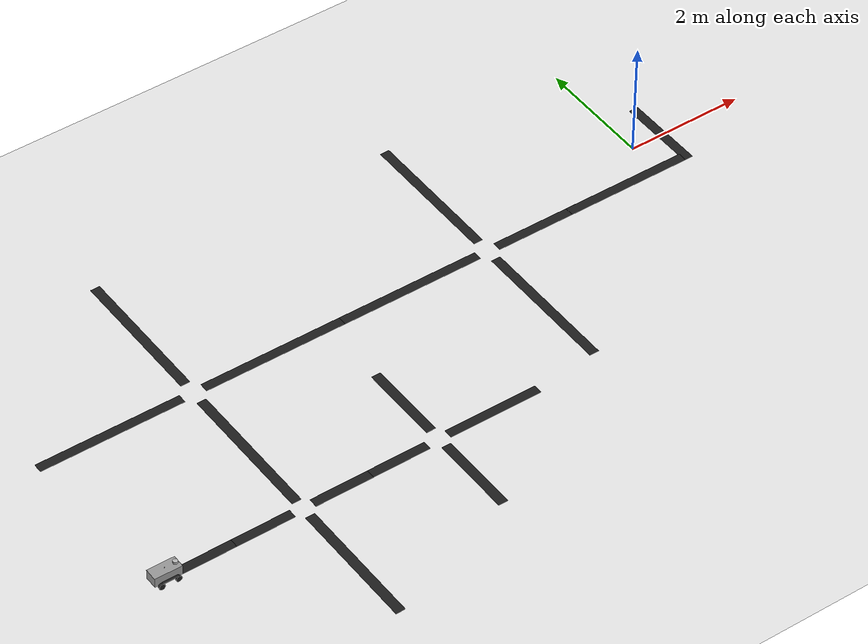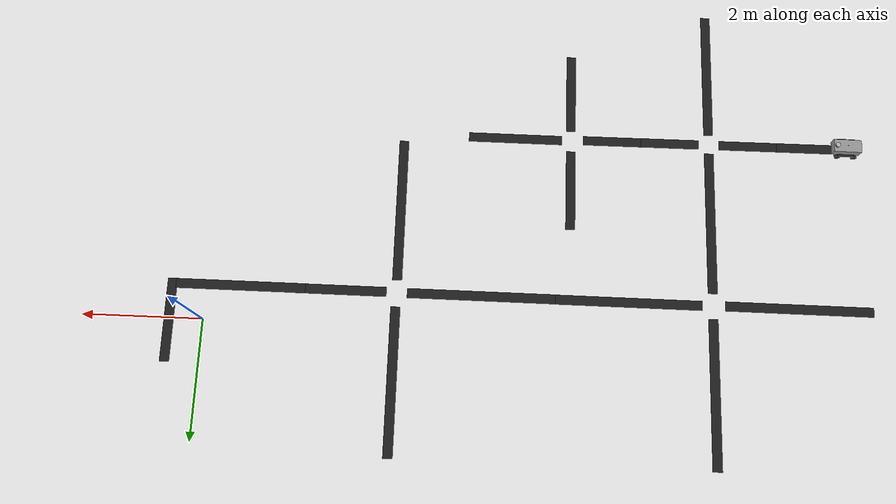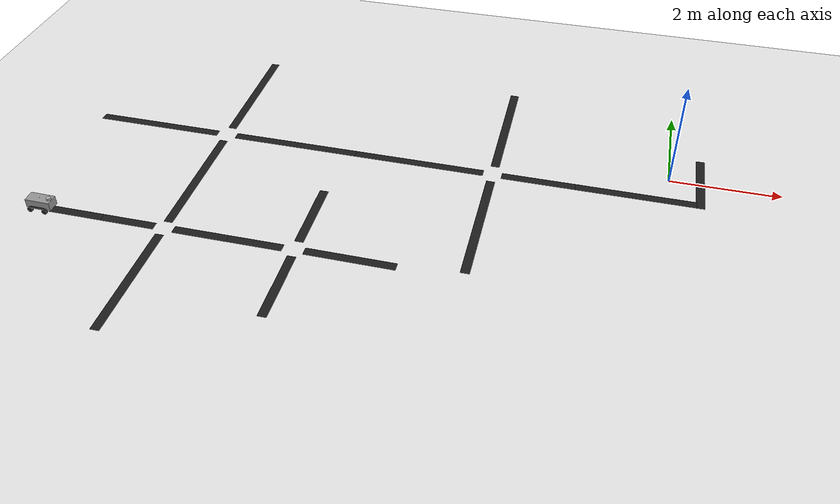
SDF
<sdf version="1.7">
 <world name="default">
  <light name="sun" type="directional">
   <pose>0 0 10 0 -0 0</pose>
   <diffuse>0.8 0.8 0.8 1</diffuse>
   <specular>0.2 0.2 0.2 1</specular>
   <attenuation>
    <range>1000</range>
    <constant>0.9</constant>
    <linear>0.01</linear>
    <quadratic>0.001</quadratic>
   </attenuation>
   <direction>-0.5 0.1 -0.9</direction>
   <spot><inner_angle>0</inner_angle><outer_angle>0</outer_angle><falloff>0</falloff></spot>
  </light>
  <model name="ground_plane">
   <static>1</static>
   <link name="link">
    <collision name="collision">
     <geometry><plane><normal>0 0 1</normal><size>100 100</size></plane></geometry>
     <surface>
      <contact><collide_bitmask>65535</collide_bitmask></contact>
      <friction><ode><mu>100</mu><mu2>50</mu2></ode></friction>
     </surface>
    </collision>
    <visual name="visual">
     <cast_shadows>0</cast_shadows>
     <geometry><plane><normal>0 0 1</normal><size>100 100</size></plane></geometry>
     <material>
      <script><uri>file://media/materials/scripts/gazebo.material</uri><name>Gazebo/White</name></script>
     </material>
    </visual>
   </link>
  </model>
  <model name="tankbot0">
   <pose>-10.7976 -3.38848 1e-06 3e-06 1e-05 -0.013737</pose>
   <frame name="tankbot::__model__" attached_to="tankbot::chassis">
    <pose relative_to="__model__">0 0 0 0 -0 0</pose>
   </frame>
   <link name="tankbot::chassis">
    <pose relative_to="tankbot::__model__">0 0 0.135 0 -0 0</pose>
    <inertial>
     <pose>0.0465 0 0 0 -0 0</pose>
     <mass>2</mass>
     <inertia>
      <ixx>0.0125927</ixx>
      <iyy>0.0408542</iyy>
      <izz>0.0438135</izz>
      <ixy>0</ixy>
      <ixz>0</ixz>
      <iyz>0</iyz>
     </inertia>
    </inertial>
    <collision name="collision"><geometry><box><size>0.465 0.216 0.17</size></box></geometry></collision>
    <visual name="visual">
     <geometry><box><size>0.465 0.216 0.17</size></box></geometry>
     <material>
      <script><uri>file://media/materials/scripts/gazebo.material</uri><name>Gazebo/Grey</name></script>
     </material>
    </visual>
   </link>
   <link name="tankbot::wheel_fl">
    <pose relative_to="tankbot::__model__">0.1395 0.142 0.05 -1.5708 -0.087266 0</pose>
    <inertial>
     <mass>0.25</mass>
     <inertia>
      <ixx>0.000189583</ixx>
      <iyy>0.000189583</iyy>
      <izz>0.0003125</izz>
      <ixy>0</ixy>
      <ixz>0</ixz>
      <iyz>0</iyz>
     </inertia>
    </inertial>
    <collision name="collision">
     <geometry><cylinder><radius>0.05</radius><length>0.04</length></cylinder></geometry>
    </collision>
    <visual name="tankbot::wheel_fl">
     <geometry><cylinder><radius>0.05</radius><length>0.04</length></cylinder></geometry>
     <material>
      <script><uri>file://media/materials/scripts/gazebo.material</uri><name>Gazebo/Black</name></script>
     </material>
    </visual>
   </link>
   <joint name="tankbot::wheel_fl_drive" type="revolute">
    <parent>tankbot::chassis</parent>
    <child>tankbot::wheel_fl</child>
    <axis>
     <xyz>0 0 1</xyz>
     <limit><lower>-1e+16</lower><upper>1e+16</upper></limit>
     <dynamics><spring_reference>0</spring_reference><spring_stiffness>0</spring_stiffness></dynamics>
    </axis>
   </joint>
   <link name="tankbot::chain_l_up">
    <pose relative_to="tankbot::__model__">0.0098 0.14 0.1 0 -0 0</pose>
    <gravity>0</gravity>
    <collision name="collision"><geometry><box><size>0.28 0.04 0.01</size></box></geometry></collision>
    <visual name="visual">
     <geometry><box><size>0.28 0.04 0.01</size></box></geometry>
     <material>
      <script><uri>file://media/materials/scripts/gazebo.material</uri><name>Gazebo/Black</name></script>
     </material>
    </visual>
    <inertial>
     <inertia><ixx>1</ixx><ixy>0</ixy><ixz>0</ixz><iyy>1</iyy><iyz>0</iyz><izz>1</izz></inertia>
     <mass>1</mass>
    </inertial>
   </link>
   <link name="tankbot::chain_r_up">
    <pose relative_to="tankbot::__model__">0.0098 -0.14 0.1 0 -0 0</pose>
    <gravity>0</gravity>
    <collision name="collision"><geometry><box><size>0.28 0.04 0.01</size></box></geometry></collision>
    <visual name="visual">
     <geometry><box><size>0.28 0.04 0.01</size></box></geometry>
     <material>
      <script><uri>file://media/materials/scripts/gazebo.material</uri><name>Gazebo/Black</name></script>
     </material>
    </visual>
    <inertial>
     <inertia><ixx>1</ixx><ixy>0</ixy><ixz>0</ixz><iyy>1</iyy><iyz>0</iyz><izz>1</izz></inertia>
     <mass>1</mass>
    </inertial>
   </link>
   <joint name="tankbot::chain_up_joint" type="revolute">
    <parent>tankbot::chassis</parent>
    <child>tankbot::chain_r_up</child>
   </joint>
   <joint name="tankbot::chain_up_2_joint" type="revolute">
    <parent>tankbot::chassis</parent>
    <child>tankbot::chain_l_up</child>
   </joint>
   <link name="tankbot::wheel_fr">
    <pose relative_to="tankbot::__model__">0.1395 -0.142 0.05 -1.5708 -0.087266 0</pose>
    <inertial>
     <mass>0.25</mass>
     <inertia>
      <ixx>0.000189583</ixx>
      <iyy>0.000189583</iyy>
      <izz>0.0003125</izz>
      <ixy>0</ixy>
      <ixz>0</ixz>
      <iyz>0</iyz>
     </inertia>
    </inertial>
    <collision name="collision">
     <geometry><cylinder><radius>0.05</radius><length>0.04</length></cylinder></geometry>
    </collision>
    <visual name="visual">
     <geometry><cylinder><radius>0.05</radius><length>0.04</length></cylinder></geometry>
     <material>
      <script><uri>file://media/materials/scripts/gazebo.material</uri><name>Gazebo/Black</name></script>
     </material>
    </visual>
   </link>
   <joint name="tankbot::wheel_fr_drive" type="revolute">
    <parent>tankbot::chassis</parent>
    <child>tankbot::wheel_fr</child>
    <axis>
     <xyz>0 0 1</xyz>
     <limit><lower>-1e+16</lower><upper>1e+16</upper></limit>
     <dynamics><spring_reference>0</spring_reference><spring_stiffness>0</spring_stiffness></dynamics>
    </axis>
   </joint>
   <link name="tankbot::wheel_rl">
    <pose relative_to="tankbot::__model__">-0.1395 0.142 0.05 -1.5708 0 0</pose>
    <inertial>
     <mass>0.25</mass>
     <inertia>
      <ixx>0.000189583</ixx>
      <iyy>0.000189583</iyy>
      <izz>0.0003125</izz>
      <ixy>0</ixy>
      <ixz>0</ixz>
      <iyz>0</iyz>
     </inertia>
    </inertial>
    <collision name="collision">
     <geometry><cylinder><radius>0.05</radius><length>0.04</length></cylinder></geometry>
    </collision>
    <visual name="visual">
     <geometry><cylinder><radius>0.05</radius><length>0.04</length></cylinder></geometry>
     <material>
      <script><uri>file://media/materials/scripts/gazebo.material</uri><name>Gazebo/Black</name></script>
     </material>
    </visual>
   </link>
   <joint name="tankbot::wheel_rl_drive" type="revolute">
    <parent>tankbot::chassis</parent>
    <child>tankbot::wheel_rl</child>
    <axis>
     <xyz>0 0 1</xyz>
     <limit><lower>-1e+16</lower><upper>1e+16</upper></limit>
     <dynamics><spring_reference>0</spring_reference><spring_stiffness>0</spring_stiffness></dynamics>
    </axis>
   </joint>
   <link name="tankbot::wheel_rr">
    <pose relative_to="tankbot::__model__">-0.1395 -0.142 0.05 -1.5708 0 0</pose>
    <inertial>
     <mass>0.25</mass>
     <inertia>
      <ixx>0.000189583</ixx>
      <iyy>0.000189583</iyy>
      <izz>0.0003125</izz>
      <ixy>0</ixy>
      <ixz>0</ixz>
      <iyz>0</iyz>
     </inertia>
    </inertial>
    <collision name="collision">
     <geometry><cylinder><radius>0.05</radius><length>0.04</length></cylinder></geometry>
    </collision>
    <visual name="visual">
     <geometry><cylinder><radius>0.05</radius><length>0.04</length></cylinder></geometry>
     <material>
      <script><uri>file://media/materials/scripts/gazebo.material</uri><name>Gazebo/Black</name></script>
     </material>
    </visual>
   </link>
   <joint name="tankbot::wheel_rr_drive" type="revolute">
    <parent>tankbot::chassis</parent>
    <child>tankbot::wheel_rr</child>
    <axis>
     <xyz>0 0 1</xyz>
     <limit><lower>-1e+16</lower><upper>1e+16</upper></limit>
     <dynamics><spring_reference>0</spring_reference><spring_stiffness>0</spring_stiffness></dynamics>
    </axis>
   </joint>
   <frame name="tankbot::ultrasonic_sensor::__model__" attached_to="tankbot::ultrasonic_sensor::link">
    <pose relative_to="tankbot::__model__">0.18 0 0.24 0 -0 0</pose>
   </frame>
   <link name="tankbot::ultrasonic_sensor::link">
    <inertial>
     <mass>0.1</mass>
     <inertia><ixx>1</ixx><ixy>0</ixy><ixz>0</ixz><iyy>1</iyy><iyz>0</iyz><izz>1</izz></inertia>
    </inertial>
    <visual name="visual">
     <geometry><cylinder><radius>0.04</radius><length>0.04</length></cylinder></geometry>
    </visual>
    <collision name="collision-base">
     <pose>0 0 -0.0145 0 -0 0</pose>
     <geometry><box><size>0.05 0.05 0.041</size></box></geometry>
    </collision>
    <collision name="collision-top">
     <pose>0 0 0.0205 0 -0 0</pose>
     <geometry><cylinder><radius>0.021</radius><length>0.029</length></cylinder></geometry>
    </collision>
    <sensor name="sonar" type="sonar">
     <pose>0.04 0 0 0 1.5 3.14</pose>
     <sonar><min>0</min><max>3</max><radius>0.3</radius></sonar>
     <plugin name="sonar" filename="libSonarPlugin.so"/>
     <always_on>1</always_on>
     <update_rate>30</update_rate>
     <visualize>1</visualize>
    </sensor>
    <pose relative_to="tankbot::ultrasonic_sensor::__model__">0 0 0 0 -0 0</pose>
   </link>
   <joint name="tankbot::sonar_joint" type="fixed">
    <child>tankbot::ultrasonic_sensor::link</child>
    <parent>tankbot::chassis</parent>
   </joint>
   <frame name="tankbot::camera_sensor::__model__" attached_to="tankbot::camera_sensor::link">
    <pose relative_to="tankbot::__model__">0.2 0 0.04 0 1.57 0</pose>
   </frame>
   <link name="tankbot::camera_sensor::link">
    <inertial>
     <mass>0.1</mass>
     <inertia><ixx>1</ixx><ixy>0</ixy><ixz>0</ixz><iyy>1</iyy><iyz>0</iyz><izz>1</izz></inertia>
    </inertial>
    <visual name="visual">
     <geometry><box><size>0.01 0.07 0.04</size></box></geometry>
     <material>
      <script><uri>file://media/materials/scripts/gazebo.material</uri><name>Gazebo/Red</name></script>
     </material>
    </visual>
    <collision name="collision">
     <pose>0 0 -0.0145 0 -0 0</pose>
     <geometry><box><size>0.01 0.07 0.04</size></box></geometry>
    </collision>
    <sensor name="camera" type="camera">
     <camera>
      <horizontal_fov>1.39626</horizontal_fov>
      <image><width>2</width><height>2</height></image>
      <clip><near>0.02</near><far>300</far></clip>
     </camera>
     <always_on>1</always_on>
     <update_rate>10</update_rate>
     <visualize>1</visualize>
     <plugin name="camera_controller" filename="libCameraPlugin.so"/>
    </sensor>
    <pose relative_to="tankbot::camera_sensor::__model__">0 0 0 0 -0 0</pose>
   </link>
   <frame name="tankbot::microphone_sensor::__model__" attached_to="tankbot::microphone_sensor::link">
    <pose relative_to="tankbot::__model__">0 0 0.23 0 -0 0</pose>
   </frame>
   <link name="tankbot::microphone_sensor::link">
    <inertial>
     <mass>0.1</mass>
     <inertia><ixx>1</ixx><ixy>0</ixy><ixz>0</ixz><iyy>1</iyy><iyz>0</iyz><izz>1</izz></inertia>
    </inertial>
    <visual name="visual">
     <geometry><box><size>0.01 0.01 0.01</size></box></geometry>
     <material>
      <script><uri>file://media/materials/scripts/gazebo.material</uri><name>Gazebo/Grey</name></script>
     </material>
    </visual>
    <collision name="collision"><geometry><box><size>0.01 0.01 0.01</size></box></geometry></collision>
    <pose relative_to="tankbot::microphone_sensor::__model__">0 0 0 0 -0 0</pose>
   </link>
   <plugin name="microphone_controller" filename="libmicrophone_control_plugin.so"/>
   <joint name="tankbot::camera_joint" type="fixed">
    <child>tankbot::camera_sensor::link</child>
    <parent>tankbot::chassis</parent>
   </joint>
   <plugin name="tankbot_control" filename="libtank_control_plugin.so"/>
   <plugin name="tankbot_control" filename="libtank_control_plugin.so"/>
  </model>
  <gravity>0 0 -9.8</gravity>
  <magnetic_field>6e-06 2.3e-05 -4.2e-05</magnetic_field>
  <atmosphere type="adiabatic"/>
  <physics type="ode">
   <max_step_size>0.001</max_step_size>
   <real_time_factor>1</real_time_factor>
   <real_time_update_rate>1000</real_time_update_rate>
  </physics>
  <scene><ambient>0.4 0.4 0.4 1</ambient><background>0.7 0.7 0.7 1</background><shadows>1</shadows></scene>
  <spherical_coordinates>
   <surface_model>EARTH_WGS84</surface_model>
   <latitude_deg>0</latitude_deg>
   <longitude_deg>0</longitude_deg>
   <elevation>0</elevation>
   <heading_deg>0</heading_deg>
  </spherical_coordinates>
  <model name="unit_box_clone_0">
   <link name="link">
    <inertial>
     <mass>1</mass>
     <inertia>
      <ixx>0.166667</ixx>
      <ixy>0</ixy>
      <ixz>0</ixz>
      <iyy>0.166667</iyy>
      <iyz>0</iyz>
      <izz>0.166667</izz>
     </inertia>
    </inertial>
    <visual name="visual">
     <geometry><box><size>1 0.160776 0.000937</size></box></geometry>
     <material>
      <script><name>Gazebo/Black</name><uri>file://media/materials/scripts/gazebo.material</uri></script>
      <shader type="pixel"><normal_map>__default__</normal_map></shader>
      <ambient>0 0 0 1</ambient>
      <diffuse>0 0 0 1</diffuse>
      <specular>0.1 0.1 0.1 1</specular>
      <emissive>0 0 0 1</emissive>
     </material>
    </visual>
    <collision name="collision">
     <geometry><box><size>1 0.160776 0.000937</size></box></geometry>
     <surface>
      <friction>
       <ode><mu>1</mu><mu2>1</mu2><fdir1>0 0 0</fdir1><slip1>0</slip1><slip2>0</slip2></ode>
       <torsional>
        <coefficient>1</coefficient>
        <patch_radius>0</patch_radius>
        <surface_radius>0</surface_radius>
        <use_patch_radius>1</use_patch_radius>
        <ode><slip>0</slip></ode>
       </torsional>
      </friction>
      <bounce><restitution_coefficient>0</restitution_coefficient><threshold>1e+06</threshold></bounce>
      <contact>
       <collide_without_contact>0</collide_without_contact>
       <collide_without_contact_bitmask>1</collide_without_contact_bitmask>
       <collide_bitmask>1</collide_bitmask>
       <ode>
        <soft_cfm>0</soft_cfm>
        <soft_erp>0.2</soft_erp>
        <kp>1e+13</kp>
        <kd>1</kd>
        <max_vel>0.01</max_vel>
        <min_depth>0</min_depth>
       </ode>
       <bullet>
        <split_impulse>1</split_impulse>
        <split_impulse_penetration_threshold>-0.01</split_impulse_penetration_threshold>
        <soft_cfm>0</soft_cfm>
        <soft_erp>0.2</soft_erp>
        <kp>1e+13</kp>
        <kd>1</kd>
       </bullet>
      </contact>
     </surface>
    </collision>
   </link>
   <static>0</static>
   <pose>-10.1353 -3.38257 0.000469 0 0 -0.000219</pose>
  </model>
  <model name="unit_box_clone_0_clone">
   <link name="link">
    <inertial>
     <mass>1</mass>
     <inertia>
      <ixx>0.166667</ixx>
      <ixy>0</ixy>
      <ixz>0</ixz>
      <iyy>0.166667</iyy>
      <iyz>0</iyz>
      <izz>0.166667</izz>
     </inertia>
    </inertial>
    <visual name="visual">
     <geometry><box><size>1 0.160776 0.000937</size></box></geometry>
     <material>
      <script><name>Gazebo/Black</name><uri>file://media/materials/scripts/gazebo.material</uri></script>
      <shader type="pixel"><normal_map>__default__</normal_map></shader>
      <ambient>0 0 0 1</ambient>
      <diffuse>0 0 0 1</diffuse>
      <specular>0.1 0.1 0.1 1</specular>
      <emissive>0 0 0 1</emissive>
     </material>
    </visual>
    <collision name="collision">
     <geometry><box><size>1 0.160776 0.000937</size></box></geometry>
     <surface>
      <friction>
       <ode><mu>1</mu><mu2>1</mu2><fdir1>0 0 0</fdir1><slip1>0</slip1><slip2>0</slip2></ode>
       <torsional>
        <coefficient>1</coefficient>
        <patch_radius>0</patch_radius>
        <surface_radius>0</surface_radius>
        <use_patch_radius>1</use_patch_radius>
        <ode><slip>0</slip></ode>
       </torsional>
      </friction>
      <bounce><restitution_coefficient>0</restitution_coefficient><threshold>1e+06</threshold></bounce>
      <contact>
       <collide_without_contact>0</collide_without_contact>
       <collide_without_contact_bitmask>1</collide_without_contact_bitmask>
       <collide_bitmask>1</collide_bitmask>
       <ode>
        <soft_cfm>0</soft_cfm>
        <soft_erp>0.2</soft_erp>
        <kp>1e+13</kp>
        <kd>1</kd>
        <max_vel>0.01</max_vel>
        <min_depth>0</min_depth>
       </ode>
       <bullet>
        <split_impulse>1</split_impulse>
        <split_impulse_penetration_threshold>-0.01</split_impulse_penetration_threshold>
        <soft_cfm>0</soft_cfm>
        <soft_erp>0.2</soft_erp>
        <kp>1e+13</kp>
        <kd>1</kd>
       </bullet>
      </contact>
     </surface>
    </collision>
   </link>
   <static>0</static>
   <pose>-9.1353 -3.38304 0.000463 -2e-06 1.2e-05 0.000171</pose>
  </model>
  <model name="unit_box_clone_0_clone_clone">
   <link name="link">
    <inertial>
     <mass>1</mass>
     <inertia>
      <ixx>0.166667</ixx>
      <ixy>0</ixy>
      <ixz>0</ixz>
      <iyy>0.166667</iyy>
      <iyz>0</iyz>
      <izz>0.166667</izz>
     </inertia>
    </inertial>
    <visual name="visual">
     <geometry><box><size>1 0.16157 0.000937</size></box></geometry>
     <material>
      <script><name>Gazebo/Black</name><uri>file://media/materials/scripts/gazebo.material</uri></script>
      <shader type="pixel"><normal_map>__default__</normal_map></shader>
      <ambient>0 0 0 1</ambient>
      <diffuse>0 0 0 1</diffuse>
      <specular>0.1 0.1 0.1 1</specular>
      <emissive>0 0 0 1</emissive>
     </material>
    </visual>
    <collision name="collision">
     <geometry><box><size>1 0.16157 0.000937</size></box></geometry>
     <surface>
      <friction>
       <ode><mu>1</mu><mu2>1</mu2><fdir1>0 0 0</fdir1><slip1>0</slip1><slip2>0</slip2></ode>
       <torsional>
        <coefficient>1</coefficient>
        <patch_radius>0</patch_radius>
        <surface_radius>0</surface_radius>
        <use_patch_radius>1</use_patch_radius>
        <ode><slip>0</slip></ode>
       </torsional>
      </friction>
      <bounce><restitution_coefficient>0</restitution_coefficient><threshold>1e+06</threshold></bounce>
      <contact>
       <collide_without_contact>0</collide_without_contact>
       <collide_without_contact_bitmask>1</collide_without_contact_bitmask>
       <collide_bitmask>1</collide_bitmask>
       <ode>
        <soft_cfm>0</soft_cfm>
        <soft_erp>0.2</soft_erp>
        <kp>1e+13</kp>
        <kd>1</kd>
        <max_vel>0.01</max_vel>
        <min_depth>0</min_depth>
       </ode>
       <bullet>
        <split_impulse>1</split_impulse>
        <split_impulse_penetration_threshold>-0.01</split_impulse_penetration_threshold>
        <soft_cfm>0</soft_cfm>
        <soft_erp>0.2</soft_erp>
        <kp>1e+13</kp>
        <kd>1</kd>
       </bullet>
      </contact>
     </surface>
    </collision>
   </link>
   <static>0</static>
   <pose>-7.78431 -3.38257 0.000468 0 0 -0.000331</pose>
  </model>
  <model name="unit_box_clone_0_clone_clone_0">
   <link name="link">
    <inertial>
     <mass>1</mass>
     <inertia>
      <ixx>0.166667</ixx>
      <ixy>0</ixy>
      <ixz>0</ixz>
      <iyy>0.166667</iyy>
      <iyz>0</iyz>
      <izz>0.166667</izz>
     </inertia>
    </inertial>
    <visual name="visual">
     <geometry><box><size>1 0.160776 0.000937</size></box></geometry>
     <material>
      <script><name>Gazebo/Black</name><uri>file://media/materials/scripts/gazebo.material</uri></script>
      <shader type="pixel"><normal_map>__default__</normal_map></shader>
      <ambient>0 0 0 1</ambient>
      <diffuse>0 0 0 1</diffuse>
      <specular>0.1 0.1 0.1 1</specular>
      <emissive>0 0 0 1</emissive>
     </material>
    </visual>
    <collision name="collision">
     <geometry><box><size>1 0.160776 0.000937</size></box></geometry>
     <surface>
      <friction>
       <ode><mu>1</mu><mu2>1</mu2><fdir1>0 0 0</fdir1><slip1>0</slip1><slip2>0</slip2></ode>
       <torsional>
        <coefficient>1</coefficient>
        <patch_radius>0</patch_radius>
        <surface_radius>0</surface_radius>
        <use_patch_radius>1</use_patch_radius>
        <ode><slip>0</slip></ode>
       </torsional>
      </friction>
      <bounce><restitution_coefficient>0</restitution_coefficient><threshold>1e+06</threshold></bounce>
      <contact>
       <collide_without_contact>0</collide_without_contact>
       <collide_without_contact_bitmask>1</collide_without_contact_bitmask>
       <collide_bitmask>1</collide_bitmask>
       <ode>
        <soft_cfm>0</soft_cfm>
        <soft_erp>0.2</soft_erp>
        <kp>1e+13</kp>
        <kd>1</kd>
        <max_vel>0.01</max_vel>
        <min_depth>0</min_depth>
       </ode>
       <bullet>
        <split_impulse>1</split_impulse>
        <split_impulse_penetration_threshold>-0.01</split_impulse_penetration_threshold>
        <soft_cfm>0</soft_cfm>
        <soft_erp>0.2</soft_erp>
        <kp>1e+13</kp>
        <kd>1</kd>
       </bullet>
      </contact>
     </surface>
    </collision>
   </link>
   <static>0</static>
   <pose>-6.78429 -3.38199 0.000468 0 0 -5.3e-05</pose>
  </model>
  <model name="unit_box_clone_0_clone_clone_clone_clone">
   <link name="link">
    <inertial>
     <mass>1</mass>
     <inertia>
      <ixx>0.166667</ixx>
      <ixy>0</ixy>
      <ixz>0</ixz>
      <iyy>0.166667</iyy>
      <iyz>0</iyz>
      <izz>0.166667</izz>
     </inertia>
    </inertial>
    <visual name="visual">
     <geometry><box><size>2.24083 0.161571 0.000937</size></box></geometry>
     <material>
      <script><name>Gazebo/Black</name><uri>file://media/materials/scripts/gazebo.material</uri></script>
      <shader type="pixel"><normal_map>__default__</normal_map></shader>
      <ambient>0 0 0 1</ambient>
      <diffuse>0 0 0 1</diffuse>
      <specular>0.1 0.1 0.1 1</specular>
      <emissive>0 0 0 1</emissive>
     </material>
    </visual>
    <collision name="collision">
     <geometry><box><size>2.24083 0.161571 0.000937</size></box></geometry>
     <surface>
      <friction>
       <ode><mu>1</mu><mu2>1</mu2><fdir1>0 0 0</fdir1><slip1>0</slip1><slip2>0</slip2></ode>
       <torsional>
        <coefficient>1</coefficient>
        <patch_radius>0</patch_radius>
        <surface_radius>0</surface_radius>
        <use_patch_radius>1</use_patch_radius>
        <ode><slip>0</slip></ode>
       </torsional>
      </friction>
      <bounce><restitution_coefficient>0</restitution_coefficient><threshold>1e+06</threshold></bounce>
      <contact>
       <collide_without_contact>0</collide_without_contact>
       <collide_without_contact_bitmask>1</collide_without_contact_bitmask>
       <collide_bitmask>1</collide_bitmask>
       <ode>
        <soft_cfm>0</soft_cfm>
        <soft_erp>0.2</soft_erp>
        <kp>1e+13</kp>
        <kd>1</kd>
        <max_vel>0.01</max_vel>
        <min_depth>0</min_depth>
       </ode>
       <bullet>
        <split_impulse>1</split_impulse>
        <split_impulse_penetration_threshold>-0.01</split_impulse_penetration_threshold>
        <soft_cfm>0</soft_cfm>
        <soft_erp>0.2</soft_erp>
        <kp>1e+13</kp>
        <kd>1</kd>
       </bullet>
      </contact>
     </surface>
    </collision>
   </link>
   <static>0</static>
   <pose>-8.45036 -4.68056 0.000349 -2e-06 0.000107 -1.56579</pose>
  </model>
  <model name="unit_box_clone_0_clone_clone_clone_clone_clone">
   <link name="link">
    <inertial>
     <mass>1</mass>
     <inertia>
      <ixx>0.166667</ixx>
      <ixy>0</ixy>
      <ixz>0</ixz>
      <iyy>0.166667</iyy>
      <iyz>0</iyz>
      <izz>0.166667</izz>
     </inertia>
    </inertial>
    <visual name="visual">
     <geometry><box><size>2.47016 0.161571 0.000937</size></box></geometry>
     <material>
      <script><name>Gazebo/Black</name><uri>file://media/materials/scripts/gazebo.material</uri></script>
      <shader type="pixel"><normal_map>__default__</normal_map></shader>
      <ambient>0 0 0 1</ambient>
      <diffuse>0 0 0 1</diffuse>
      <specular>0.1 0.1 0.1 1</specular>
      <emissive>0 0 0 1</emissive>
     </material>
    </visual>
    <collision name="collision">
     <geometry><box><size>2.47016 0.161571 0.000937</size></box></geometry>
     <surface>
      <friction>
       <ode><mu>1</mu><mu2>1</mu2><fdir1>0 0 0</fdir1><slip1>0</slip1><slip2>0</slip2></ode>
       <torsional>
        <coefficient>1</coefficient>
        <patch_radius>0</patch_radius>
        <surface_radius>0</surface_radius>
        <use_patch_radius>1</use_patch_radius>
        <ode><slip>0</slip></ode>
       </torsional>
      </friction>
      <bounce><restitution_coefficient>0</restitution_coefficient><threshold>1e+06</threshold></bounce>
      <contact>
       <collide_without_contact>0</collide_without_contact>
       <collide_without_contact_bitmask>1</collide_without_contact_bitmask>
       <collide_bitmask>1</collide_bitmask>
       <ode>
        <soft_cfm>0</soft_cfm>
        <soft_erp>0.2</soft_erp>
        <kp>1e+13</kp>
        <kd>1</kd>
        <max_vel>0.01</max_vel>
        <min_depth>0</min_depth>
       </ode>
       <bullet>
        <split_impulse>1</split_impulse>
        <split_impulse_penetration_threshold>-0.01</split_impulse_penetration_threshold>
        <soft_cfm>0</soft_cfm>
        <soft_erp>0.2</soft_erp>
        <kp>1e+13</kp>
        <kd>1</kd>
       </bullet>
      </contact>
     </surface>
    </collision>
   </link>
   <static>0</static>
   <pose>-8.46407 -1.99098 0.000469 -1e-06 -0 -1.56568</pose>
  </model>
  <model name="unit_box_clone_0_clone_clone_clone_clone_clone_clone">
   <link name="link">
    <inertial>
     <mass>1</mass>
     <inertia>
      <ixx>0.166667</ixx>
      <ixy>0</ixy>
      <ixz>0</ixz>
      <iyy>0.166667</iyy>
      <iyz>0</iyz>
      <izz>0.166667</izz>
     </inertia>
    </inertial>
    <visual name="visual">
     <geometry><box><size>2.47016 0.161571 0.000937</size></box></geometry>
     <material>
      <script><name>Gazebo/Black</name><uri>file://media/materials/scripts/gazebo.material</uri></script>
      <shader type="pixel"><normal_map>__default__</normal_map></shader>
      <ambient>0 0 0 1</ambient>
      <diffuse>0 0 0 1</diffuse>
      <specular>0.1 0.1 0.1 1</specular>
      <emissive>0 0 0 1</emissive>
     </material>
    </visual>
    <collision name="collision">
     <geometry><box><size>2.47016 0.161571 0.000937</size></box></geometry>
     <surface>
      <friction>
       <ode><mu>1</mu><mu2>1</mu2><fdir1>0 0 0</fdir1><slip1>0</slip1><slip2>0</slip2></ode>
       <torsional>
        <coefficient>1</coefficient>
        <patch_radius>0</patch_radius>
        <surface_radius>0</surface_radius>
        <use_patch_radius>1</use_patch_radius>
        <ode><slip>0</slip></ode>
       </torsional>
      </friction>
      <bounce><restitution_coefficient>0</restitution_coefficient><threshold>1e+06</threshold></bounce>
      <contact>
       <collide_without_contact>0</collide_without_contact>
       <collide_without_contact_bitmask>1</collide_without_contact_bitmask>
       <collide_bitmask>1</collide_bitmask>
       <ode>
        <soft_cfm>0</soft_cfm>
        <soft_erp>0.2</soft_erp>
        <kp>1e+13</kp>
        <kd>1</kd>
        <max_vel>0.01</max_vel>
        <min_depth>0</min_depth>
       </ode>
       <bullet>
        <split_impulse>1</split_impulse>
        <split_impulse_penetration_threshold>-0.01</split_impulse_penetration_threshold>
        <soft_cfm>0</soft_cfm>
        <soft_erp>0.2</soft_erp>
        <kp>1e+13</kp>
        <kd>1</kd>
       </bullet>
      </contact>
     </surface>
    </collision>
   </link>
   <static>0</static>
   <pose>-8.47599 0.908857 0.000288 3e-06 0.000147 -1.56587</pose>
  </model>
  <model name="unit_box_clone_0_clone_clone_clone_clone_clone_clone_clone">
   <link name="link">
    <inertial>
     <mass>1</mass>
     <inertia>
      <ixx>0.166667</ixx>
      <ixy>0</ixy>
      <ixz>0</ixz>
      <iyy>0.166667</iyy>
      <iyz>0</iyz>
      <izz>0.166667</izz>
     </inertia>
    </inertial>
    <visual name="visual">
     <geometry><box><size>2.47016 0.161571 0.000937</size></box></geometry>
     <material>
      <script><name>Gazebo/Black</name><uri>file://media/materials/scripts/gazebo.material</uri></script>
      <shader type="pixel"><normal_map>__default__</normal_map></shader>
      <ambient>0 0 0 1</ambient>
      <diffuse>0 0 0 1</diffuse>
      <specular>0.1 0.1 0.1 1</specular>
      <emissive>0 0 0 1</emissive>
     </material>
    </visual>
    <collision name="collision">
     <geometry><box><size>2.47016 0.161571 0.000937</size></box></geometry>
     <surface>
      <friction>
       <ode><mu>1</mu><mu2>1</mu2><fdir1>0 0 0</fdir1><slip1>0</slip1><slip2>0</slip2></ode>
       <torsional>
        <coefficient>1</coefficient>
        <patch_radius>0</patch_radius>
        <surface_radius>0</surface_radius>
        <use_patch_radius>1</use_patch_radius>
        <ode><slip>0</slip></ode>
       </torsional>
      </friction>
      <bounce><restitution_coefficient>0</restitution_coefficient><threshold>1e+06</threshold></bounce>
      <contact>
       <collide_without_contact>0</collide_without_contact>
       <collide_without_contact_bitmask>1</collide_without_contact_bitmask>
       <collide_bitmask>1</collide_bitmask>
       <ode>
        <soft_cfm>0</soft_cfm>
        <soft_erp>0.2</soft_erp>
        <kp>1e+13</kp>
        <kd>1</kd>
        <max_vel>0.01</max_vel>
        <min_depth>0</min_depth>
       </ode>
       <bullet>
        <split_impulse>1</split_impulse>
        <split_impulse_penetration_threshold>-0.01</split_impulse_penetration_threshold>
        <soft_cfm>0</soft_cfm>
        <soft_erp>0.2</soft_erp>
        <kp>1e+13</kp>
        <kd>1</kd>
       </bullet>
      </contact>
     </surface>
    </collision>
   </link>
   <static>0</static>
   <pose>-7.0586 -0.551187 0.000469 0 -0 3.13717</pose>
  </model>
  <model name="unit_box_clone_0_clone_clone_clone_clone_clone_clone_clone_clone">
   <link name="link">
    <inertial>
     <mass>1</mass>
     <inertia>
      <ixx>0.166667</ixx>
      <ixy>0</ixy>
      <ixz>0</ixz>
      <iyy>0.166667</iyy>
      <iyz>0</iyz>
      <izz>0.166667</izz>
     </inertia>
    </inertial>
    <visual name="visual">
     <geometry><box><size>2.47016 0.161571 0.000937</size></box></geometry>
     <material>
      <script><name>Gazebo/Black</name><uri>file://media/materials/scripts/gazebo.material</uri></script>
      <shader type="pixel"><normal_map>__default__</normal_map></shader>
      <ambient>0 0 0 1</ambient>
      <diffuse>0 0 0 1</diffuse>
      <specular>0.1 0.1 0.1 1</specular>
      <emissive>0 0 0 1</emissive>
     </material>
    </visual>
    <collision name="collision">
     <geometry><box><size>2.47016 0.161571 0.000937</size></box></geometry>
     <surface>
      <friction>
       <ode><mu>1</mu><mu2>1</mu2><fdir1>0 0 0</fdir1><slip1>0</slip1><slip2>0</slip2></ode>
       <torsional>
        <coefficient>1</coefficient>
        <patch_radius>0</patch_radius>
        <surface_radius>0</surface_radius>
        <use_patch_radius>1</use_patch_radius>
        <ode><slip>0</slip></ode>
       </torsional>
      </friction>
      <bounce><restitution_coefficient>0</restitution_coefficient><threshold>1e+06</threshold></bounce>
      <contact>
       <collide_without_contact>0</collide_without_contact>
       <collide_without_contact_bitmask>1</collide_without_contact_bitmask>
       <collide_bitmask>1</collide_bitmask>
       <ode>
        <soft_cfm>0</soft_cfm>
        <soft_erp>0.2</soft_erp>
        <kp>1e+13</kp>
        <kd>1</kd>
        <max_vel>0.01</max_vel>
        <min_depth>0</min_depth>
       </ode>
       <bullet>
        <split_impulse>1</split_impulse>
        <split_impulse_penetration_threshold>-0.01</split_impulse_penetration_threshold>
        <soft_cfm>0</soft_cfm>
        <soft_erp>0.2</soft_erp>
        <kp>1e+13</kp>
        <kd>1</kd>
       </bullet>
      </contact>
     </surface>
    </collision>
   </link>
   <static>0</static>
   <pose>-9.90781 -0.546575 0.000469 -1e-06 -0 3.13709</pose>
  </model>
  <model name="unit_box_clone_0_clone_clone_clone_clone_clone_clone_clone_clone_0">
   <link name="link">
    <inertial>
     <mass>1</mass>
     <inertia>
      <ixx>0.166667</ixx>
      <ixy>0</ixy>
      <ixz>0</ixz>
      <iyy>0.166667</iyy>
      <iyz>0</iyz>
      <izz>0.166667</izz>
     </inertia>
    </inertial>
    <visual name="visual">
     <geometry><box><size>2.47016 0.161571 0.000937</size></box></geometry>
     <material>
      <script><name>Gazebo/Black</name><uri>file://media/materials/scripts/gazebo.material</uri></script>
      <shader type="pixel"><normal_map>__default__</normal_map></shader>
      <ambient>0 0 0 1</ambient>
      <diffuse>0 0 0 1</diffuse>
      <specular>0.1 0.1 0.1 1</specular>
      <emissive>0 0 0 1</emissive>
     </material>
    </visual>
    <collision name="collision">
     <geometry><box><size>2.47016 0.161571 0.000937</size></box></geometry>
     <surface>
      <friction>
       <ode><mu>1</mu><mu2>1</mu2><fdir1>0 0 0</fdir1><slip1>0</slip1><slip2>0</slip2></ode>
       <torsional>
        <coefficient>1</coefficient>
        <patch_radius>0</patch_radius>
        <surface_radius>0</surface_radius>
        <use_patch_radius>1</use_patch_radius>
        <ode><slip>0</slip></ode>
       </torsional>
      </friction>
      <bounce><restitution_coefficient>0</restitution_coefficient><threshold>1e+06</threshold></bounce>
      <contact>
       <collide_without_contact>0</collide_without_contact>
       <collide_without_contact_bitmask>1</collide_without_contact_bitmask>
       <collide_bitmask>1</collide_bitmask>
       <ode>
        <soft_cfm>0</soft_cfm>
        <soft_erp>0.2</soft_erp>
        <kp>1e+13</kp>
        <kd>1</kd>
        <max_vel>0.01</max_vel>
        <min_depth>0</min_depth>
       </ode>
       <bullet>
        <split_impulse>1</split_impulse>
        <split_impulse_penetration_threshold>-0.01</split_impulse_penetration_threshold>
        <soft_cfm>0</soft_cfm>
        <soft_erp>0.2</soft_erp>
        <kp>1e+13</kp>
        <kd>1</kd>
       </bullet>
      </contact>
     </surface>
    </collision>
   </link>
   <static>0</static>
   <pose>-4.60425 -0.56418 0.000932 -3e-06 -0.000382 3.13702</pose>
  </model>
  <model name="unit_box_clone_0_clone_clone_clone_clone_clone_clone_clone_clone_0_clone">
   <link name="link">
    <inertial>
     <mass>1</mass>
     <inertia>
      <ixx>0.166667</ixx>
      <ixy>0</ixy>
      <ixz>0</ixz>
      <iyy>0.166667</iyy>
      <iyz>0</iyz>
      <izz>0.166667</izz>
     </inertia>
    </inertial>
    <visual name="visual">
     <geometry><box><size>1.61239 0.161571 0.000937</size></box></geometry>
     <material>
      <script><name>Gazebo/Black</name><uri>file://media/materials/scripts/gazebo.material</uri></script>
      <shader type="pixel"><normal_map>__default__</normal_map></shader>
      <ambient>0 0 0 1</ambient>
      <diffuse>0 0 0 1</diffuse>
      <specular>0.1 0.1 0.1 1</specular>
      <emissive>0 0 0 1</emissive>
     </material>
    </visual>
    <collision name="collision">
     <geometry><box><size>1.61239 0.161571 0.000937</size></box></geometry>
     <surface>
      <friction>
       <ode><mu>1</mu><mu2>1</mu2><fdir1>0 0 0</fdir1><slip1>0</slip1><slip2>0</slip2></ode>
       <torsional>
        <coefficient>1</coefficient>
        <patch_radius>0</patch_radius>
        <surface_radius>0</surface_radius>
        <use_patch_radius>1</use_patch_radius>
        <ode><slip>0</slip></ode>
       </torsional>
      </friction>
      <bounce><restitution_coefficient>0</restitution_coefficient><threshold>1e+06</threshold></bounce>
      <contact>
       <collide_without_contact>0</collide_without_contact>
       <collide_without_contact_bitmask>1</collide_without_contact_bitmask>
       <collide_bitmask>1</collide_bitmask>
       <ode>
        <soft_cfm>0</soft_cfm>
        <soft_erp>0.2</soft_erp>
        <kp>1e+13</kp>
        <kd>1</kd>
        <max_vel>0.01</max_vel>
        <min_depth>0</min_depth>
       </ode>
       <bullet>
        <split_impulse>1</split_impulse>
        <split_impulse_penetration_threshold>-0.01</split_impulse_penetration_threshold>
        <soft_cfm>0</soft_cfm>
        <soft_erp>0.2</soft_erp>
        <kp>1e+13</kp>
        <kd>1</kd>
       </bullet>
      </contact>
     </surface>
    </collision>
   </link>
   <static>0</static>
   <pose>-2.21666 -0.578803 0.000382 -1e-06 -0.000108 3.13711</pose>
  </model>
  <model name="unit_box_clone_0_clone_clone_clone_clone_clone_clone_clone_0">
   <link name="link">
    <inertial>
     <mass>1</mass>
     <inertia>
      <ixx>0.166667</ixx>
      <ixy>0</ixy>
      <ixz>0</ixz>
      <iyy>0.166667</iyy>
      <iyz>0</iyz>
      <izz>0.166667</izz>
     </inertia>
    </inertial>
    <visual name="visual">
     <geometry><box><size>2.47016 0.161571 0.000937</size></box></geometry>
     <material>
      <script><name>Gazebo/Black</name><uri>file://media/materials/scripts/gazebo.material</uri></script>
      <shader type="pixel"><normal_map>__default__</normal_map></shader>
      <ambient>0 0 0 1</ambient>
      <diffuse>0 0 0 1</diffuse>
      <specular>0.1 0.1 0.1 1</specular>
      <emissive>0 0 0 1</emissive>
     </material>
    </visual>
    <collision name="collision">
     <geometry><box><size>2.47016 0.161571 0.000937</size></box></geometry>
     <surface>
      <friction>
       <ode><mu>1</mu><mu2>1</mu2><fdir1>0 0 0</fdir1><slip1>0</slip1><slip2>0</slip2></ode>
       <torsional>
        <coefficient>1</coefficient>
        <patch_radius>0</patch_radius>
        <surface_radius>0</surface_radius>
        <use_patch_radius>1</use_patch_radius>
        <ode><slip>0</slip></ode>
       </torsional>
      </friction>
      <bounce><restitution_coefficient>0</restitution_coefficient><threshold>1e+06</threshold></bounce>
      <contact>
       <collide_without_contact>0</collide_without_contact>
       <collide_without_contact_bitmask>1</collide_without_contact_bitmask>
       <collide_bitmask>1</collide_bitmask>
       <ode>
        <soft_cfm>0</soft_cfm>
        <soft_erp>0.2</soft_erp>
        <kp>1e+13</kp>
        <kd>1</kd>
        <max_vel>0.01</max_vel>
        <min_depth>0</min_depth>
       </ode>
       <bullet>
        <split_impulse>1</split_impulse>
        <split_impulse_penetration_threshold>-0.01</split_impulse_penetration_threshold>
        <soft_cfm>0</soft_cfm>
        <soft_erp>0.2</soft_erp>
        <kp>1e+13</kp>
        <kd>1</kd>
       </bullet>
      </contact>
     </surface>
    </collision>
   </link>
   <static>0</static>
   <pose>-3.19343 0.904537 0.000288 -3e-06 -0.000147 -1.56587</pose>
  </model>
  <model name="unit_box_clone_0_clone_clone_clone_clone_clone_clone_clone_1">
   <link name="link">
    <inertial>
     <mass>1</mass>
     <inertia>
      <ixx>0.166667</ixx>
      <ixy>0</ixy>
      <ixz>0</ixz>
      <iyy>0.166667</iyy>
      <iyz>0</iyz>
      <izz>0.166667</izz>
     </inertia>
    </inertial>
    <visual name="visual">
     <geometry><box><size>2.47016 0.161571 0.000937</size></box></geometry>
     <material>
      <script><name>Gazebo/Black</name><uri>file://media/materials/scripts/gazebo.material</uri></script>
      <shader type="pixel"><normal_map>__default__</normal_map></shader>
      <ambient>0 0 0 1</ambient>
      <diffuse>0 0 0 1</diffuse>
      <specular>0.1 0.1 0.1 1</specular>
      <emissive>0 0 0 1</emissive>
     </material>
    </visual>
    <collision name="collision">
     <geometry><box><size>2.47016 0.161571 0.000937</size></box></geometry>
     <surface>
      <friction>
       <ode><mu>1</mu><mu2>1</mu2><fdir1>0 0 0</fdir1><slip1>0</slip1><slip2>0</slip2></ode>
       <torsional>
        <coefficient>1</coefficient>
        <patch_radius>0</patch_radius>
        <surface_radius>0</surface_radius>
        <use_patch_radius>1</use_patch_radius>
        <ode><slip>0</slip></ode>
       </torsional>
      </friction>
      <bounce><restitution_coefficient>0</restitution_coefficient><threshold>1e+06</threshold></bounce>
      <contact>
       <collide_without_contact>0</collide_without_contact>
       <collide_without_contact_bitmask>1</collide_without_contact_bitmask>
       <collide_bitmask>1</collide_bitmask>
       <ode>
        <soft_cfm>0</soft_cfm>
        <soft_erp>0.2</soft_erp>
        <kp>1e+13</kp>
        <kd>1</kd>
        <max_vel>0.01</max_vel>
        <min_depth>0</min_depth>
       </ode>
       <bullet>
        <split_impulse>1</split_impulse>
        <split_impulse_penetration_threshold>-0.01</split_impulse_penetration_threshold>
        <soft_cfm>0</soft_cfm>
        <soft_erp>0.2</soft_erp>
        <kp>1e+13</kp>
        <kd>1</kd>
       </bullet>
      </contact>
     </surface>
    </collision>
   </link>
   <static>0</static>
   <pose>-3.1839 -2.01941 0.000288 -3e-06 -0.000147 -1.56587</pose>
  </model>
  <model name="unit_box_clone_0_clone_clone_clone_clone_clone_0">
   <link name="link">
    <inertial>
     <mass>1</mass>
     <inertia>
      <ixx>0.166667</ixx>
      <ixy>0</ixy>
      <ixz>0</ixz>
      <iyy>0.166667</iyy>
      <iyz>0</iyz>
      <izz>0.166667</izz>
     </inertia>
    </inertial>
    <visual name="visual">
     <geometry><box><size>1.39967 0.161571 0.000937</size></box></geometry>
     <material>
      <script><name>Gazebo/Black</name><uri>file://media/materials/scripts/gazebo.material</uri></script>
      <shader type="pixel"><normal_map>__default__</normal_map></shader>
      <ambient>0 0 0 1</ambient>
      <diffuse>0 0 0 1</diffuse>
      <specular>0.1 0.1 0.1 1</specular>
      <emissive>0 0 0 1</emissive>
     </material>
    </visual>
    <collision name="collision">
     <geometry><box><size>1.39967 0.161571 0.000937</size></box></geometry>
     <surface>
      <friction>
       <ode><mu>1</mu><mu2>1</mu2><fdir1>0 0 0</fdir1><slip1>0</slip1><slip2>0</slip2></ode>
       <torsional>
        <coefficient>1</coefficient>
        <patch_radius>0</patch_radius>
        <surface_radius>0</surface_radius>
        <use_patch_radius>1</use_patch_radius>
        <ode><slip>0</slip></ode>
       </torsional>
      </friction>
      <bounce><restitution_coefficient>0</restitution_coefficient><threshold>1e+06</threshold></bounce>
      <contact>
       <collide_without_contact>0</collide_without_contact>
       <collide_without_contact_bitmask>1</collide_without_contact_bitmask>
       <collide_bitmask>1</collide_bitmask>
       <ode>
        <soft_cfm>0</soft_cfm>
        <soft_erp>0.2</soft_erp>
        <kp>1e+13</kp>
        <kd>1</kd>
        <max_vel>0.01</max_vel>
        <min_depth>0</min_depth>
       </ode>
       <bullet>
        <split_impulse>1</split_impulse>
        <split_impulse_penetration_threshold>-0.01</split_impulse_penetration_threshold>
        <soft_cfm>0</soft_cfm>
        <soft_erp>0.2</soft_erp>
        <kp>1e+13</kp>
        <kd>1</kd>
       </bullet>
      </contact>
     </surface>
    </collision>
   </link>
   <static>0</static>
   <pose>-6.07344 -2.47285 0.000455 0 1.9e-05 -1.5659</pose>
  </model>
  <model name="unit_box_clone_0_clone_clone_clone_clone_clone_0_clone">
   <link name="link">
    <inertial>
     <mass>1</mass>
     <inertia>
      <ixx>0.166667</ixx>
      <ixy>0</ixy>
      <ixz>0</ixz>
      <iyy>0.166667</iyy>
      <iyz>0</iyz>
      <izz>0.166667</izz>
     </inertia>
    </inertial>
    <visual name="visual">
     <geometry><box><size>1.39967 0.161571 0.000937</size></box></geometry>
     <material>
      <script><name>Gazebo/Black</name><uri>file://media/materials/scripts/gazebo.material</uri></script>
      <shader type="pixel"><normal_map>__default__</normal_map></shader>
      <ambient>0 0 0 1</ambient>
      <diffuse>0 0 0 1</diffuse>
      <specular>0.1 0.1 0.1 1</specular>
      <emissive>0 0 0 1</emissive>
     </material>
    </visual>
    <collision name="collision">
     <geometry><box><size>1.39967 0.161571 0.000937</size></box></geometry>
     <surface>
      <friction>
       <ode><mu>1</mu><mu2>1</mu2><fdir1>0 0 0</fdir1><slip1>0</slip1><slip2>0</slip2></ode>
       <torsional>
        <coefficient>1</coefficient>
        <patch_radius>0</patch_radius>
        <surface_radius>0</surface_radius>
        <use_patch_radius>1</use_patch_radius>
        <ode><slip>0</slip></ode>
       </torsional>
      </friction>
      <bounce><restitution_coefficient>0</restitution_coefficient><threshold>1e+06</threshold></bounce>
      <contact>
       <collide_without_contact>0</collide_without_contact>
       <collide_without_contact_bitmask>1</collide_without_contact_bitmask>
       <collide_bitmask>1</collide_bitmask>
       <ode>
        <soft_cfm>0</soft_cfm>
        <soft_erp>0.2</soft_erp>
        <kp>1e+13</kp>
        <kd>1</kd>
        <max_vel>0.01</max_vel>
        <min_depth>0</min_depth>
       </ode>
       <bullet>
        <split_impulse>1</split_impulse>
        <split_impulse_penetration_threshold>-0.01</split_impulse_penetration_threshold>
        <soft_cfm>0</soft_cfm>
        <soft_erp>0.2</soft_erp>
        <kp>1e+13</kp>
        <kd>1</kd>
       </bullet>
      </contact>
     </surface>
    </collision>
   </link>
   <static>0</static>
   <pose>-6.06066 -4.24235 0.000455 0 -1.9e-05 -1.56586</pose>
  </model>
  <model name="unit_box_clone_0_clone_clone_clone_clone_clone_clone_clone_clone_0_clone_clone">
   <link name="link">
    <inertial>
     <mass>1</mass>
     <inertia>
      <ixx>0.166667</ixx>
      <ixy>0</ixy>
      <ixz>0</ixz>
      <iyy>0.166667</iyy>
      <iyz>0</iyz>
      <izz>0.166667</izz>
     </inertia>
    </inertial>
    <visual name="visual">
     <geometry><box><size>1.61239 0.161571 0.000937</size></box></geometry>
     <material>
      <script><name>Gazebo/Black</name><uri>file://media/materials/scripts/gazebo.material</uri></script>
      <shader type="pixel"><normal_map>__default__</normal_map></shader>
      <ambient>0 0 0 1</ambient>
      <diffuse>0 0 0 1</diffuse>
      <specular>0.1 0.1 0.1 1</specular>
      <emissive>0 0 0 1</emissive>
     </material>
    </visual>
    <collision name="collision">
     <geometry><box><size>1.61239 0.161571 0.000937</size></box></geometry>
     <surface>
      <friction>
       <ode><mu>1</mu><mu2>1</mu2><fdir1>0 0 0</fdir1><slip1>0</slip1><slip2>0</slip2></ode>
       <torsional>
        <coefficient>1</coefficient>
        <patch_radius>0</patch_radius>
        <surface_radius>0</surface_radius>
        <use_patch_radius>1</use_patch_radius>
        <ode><slip>0</slip></ode>
       </torsional>
      </friction>
      <bounce><restitution_coefficient>0</restitution_coefficient><threshold>1e+06</threshold></bounce>
      <contact>
       <collide_without_contact>0</collide_without_contact>
       <collide_without_contact_bitmask>1</collide_without_contact_bitmask>
       <collide_bitmask>1</collide_bitmask>
       <ode>
        <soft_cfm>0</soft_cfm>
        <soft_erp>0.2</soft_erp>
        <kp>1e+13</kp>
        <kd>1</kd>
        <max_vel>0.01</max_vel>
        <min_depth>0</min_depth>
       </ode>
       <bullet>
        <split_impulse>1</split_impulse>
        <split_impulse_penetration_threshold>-0.01</split_impulse_penetration_threshold>
        <soft_cfm>0</soft_cfm>
        <soft_erp>0.2</soft_erp>
        <kp>1e+13</kp>
        <kd>1</kd>
       </bullet>
      </contact>
     </surface>
    </collision>
   </link>
   <static>0</static>
   <pose>-5.10464 -3.37241 0.000441 -0 -3.4e-05 3.13711</pose>
  </model>
  <model name="unit_box_clone_0_clone_clone_clone_clone_clone_clone_clone_clone_0_clone_clone_0">
   <link name="link">
    <inertial>
     <mass>1</mass>
     <inertia>
      <ixx>0.166667</ixx>
      <ixy>0</ixy>
      <ixz>0</ixz>
      <iyy>0.166667</iyy>
      <iyz>0</iyz>
      <izz>0.166667</izz>
     </inertia>
    </inertial>
    <visual name="visual">
     <geometry><box><size>2.16863 0.161571 0.000937</size></box></geometry>
     <material>
      <script><name>Gazebo/Black</name><uri>file://media/materials/scripts/gazebo.material</uri></script>
      <shader type="pixel"><normal_map>__default__</normal_map></shader>
      <ambient>0 0 0 1</ambient>
      <diffuse>0 0 0 1</diffuse>
      <specular>0.1 0.1 0.1 1</specular>
      <emissive>0 0 0 1</emissive>
     </material>
    </visual>
    <collision name="collision">
     <geometry><box><size>2.16863 0.161571 0.000937</size></box></geometry>
     <surface>
      <friction>
       <ode><mu>1</mu><mu2>1</mu2><fdir1>0 0 0</fdir1><slip1>0</slip1><slip2>0</slip2></ode>
       <torsional>
        <coefficient>1</coefficient>
        <patch_radius>0</patch_radius>
        <surface_radius>0</surface_radius>
        <use_patch_radius>1</use_patch_radius>
        <ode><slip>0</slip></ode>
       </torsional>
      </friction>
      <bounce><restitution_coefficient>0</restitution_coefficient><threshold>1e+06</threshold></bounce>
      <contact>
       <collide_without_contact>0</collide_without_contact>
       <collide_without_contact_bitmask>1</collide_without_contact_bitmask>
       <collide_bitmask>1</collide_bitmask>
       <ode>
        <soft_cfm>0</soft_cfm>
        <soft_erp>0.2</soft_erp>
        <kp>1e+13</kp>
        <kd>1</kd>
        <max_vel>0.01</max_vel>
        <min_depth>0</min_depth>
       </ode>
       <bullet>
        <split_impulse>1</split_impulse>
        <split_impulse_penetration_threshold>-0.01</split_impulse_penetration_threshold>
        <soft_cfm>0</soft_cfm>
        <soft_erp>0.2</soft_erp>
        <kp>1e+13</kp>
        <kd>1</kd>
       </bullet>
      </contact>
     </surface>
    </collision>
   </link>
   <static>0</static>
   <pose>-0.57702 -0.586988 0.001219 -3.8e-05 0.000158 3.13776</pose>
  </model>
  <model name="unit_box_clone_0_clone_clone_clone_clone_clone_clone_clone_0_clone">
   <link name="link">
    <inertial>
     <mass>1</mass>
     <inertia>
      <ixx>0.166667</ixx>
      <ixy>0</ixy>
      <ixz>0</ixz>
      <iyy>0.166667</iyy>
      <iyz>0</iyz>
      <izz>0.166667</izz>
     </inertia>
    </inertial>
    <visual name="visual">
     <geometry><box><size>1.39699 0.161571 0.000937</size></box></geometry>
     <material>
      <script><name>Gazebo/Black</name><uri>file://media/materials/scripts/gazebo.material</uri></script>
      <shader type="pixel"><normal_map>__default__</normal_map></shader>
      <ambient>0 0 0 1</ambient>
      <diffuse>0 0 0 1</diffuse>
      <specular>0.1 0.1 0.1 1</specular>
      <emissive>0 0 0 1</emissive>
     </material>
    </visual>
    <collision name="collision">
     <geometry><box><size>1.39699 0.161571 0.000937</size></box></geometry>
     <surface>
      <friction>
       <ode><mu>1</mu><mu2>1</mu2><fdir1>0 0 0</fdir1><slip1>0</slip1><slip2>0</slip2></ode>
       <torsional>
        <coefficient>1</coefficient>
        <patch_radius>0</patch_radius>
        <surface_radius>0</surface_radius>
        <use_patch_radius>1</use_patch_radius>
        <ode><slip>0</slip></ode>
       </torsional>
      </friction>
      <bounce><restitution_coefficient>0</restitution_coefficient><threshold>1e+06</threshold></bounce>
      <contact>
       <collide_without_contact>0</collide_without_contact>
       <collide_without_contact_bitmask>1</collide_without_contact_bitmask>
       <collide_bitmask>1</collide_bitmask>
       <ode>
        <soft_cfm>0</soft_cfm>
        <soft_erp>0.2</soft_erp>
        <kp>1e+13</kp>
        <kd>1</kd>
        <max_vel>0.01</max_vel>
        <min_depth>0</min_depth>
       </ode>
       <bullet>
        <split_impulse>1</split_impulse>
        <split_impulse_penetration_threshold>-0.01</split_impulse_penetration_threshold>
        <soft_cfm>0</soft_cfm>
        <soft_erp>0.2</soft_erp>
        <kp>1e+13</kp>
        <kd>1</kd>
       </bullet>
      </contact>
     </surface>
    </collision>
   </link>
   <static>0</static>
   <pose>0.561271 0.027185 0.000416 -0 -7.6e-05 -1.56465</pose>
  </model>
 </world>
</sdf>
